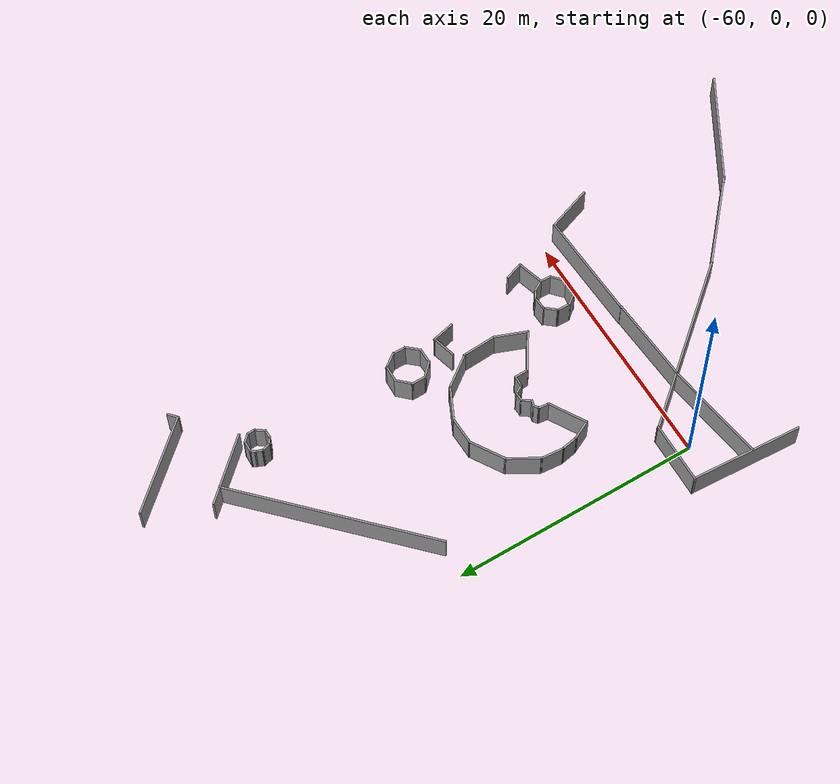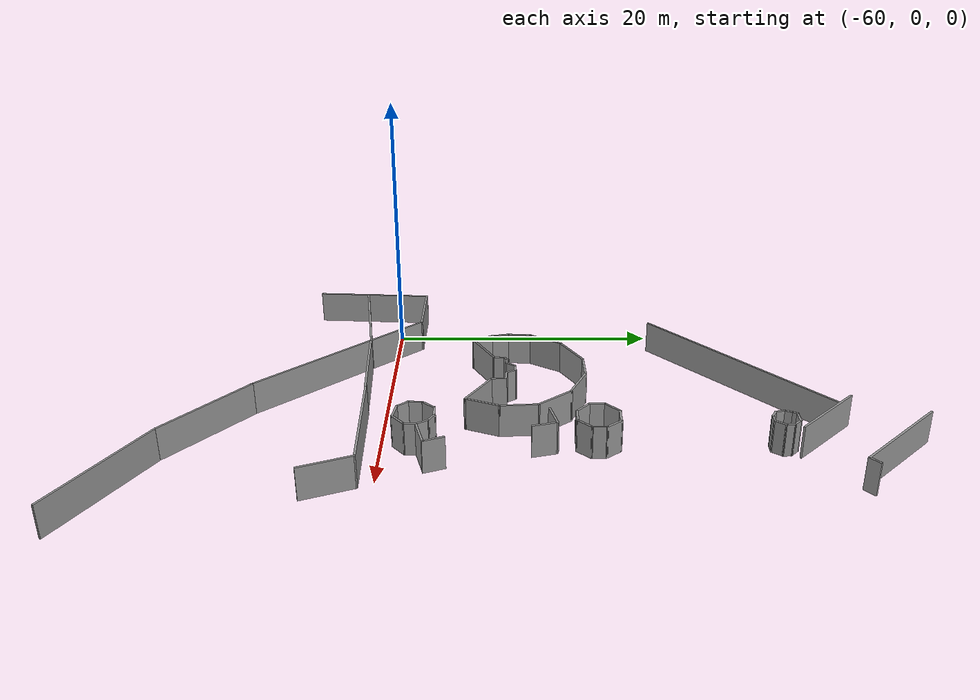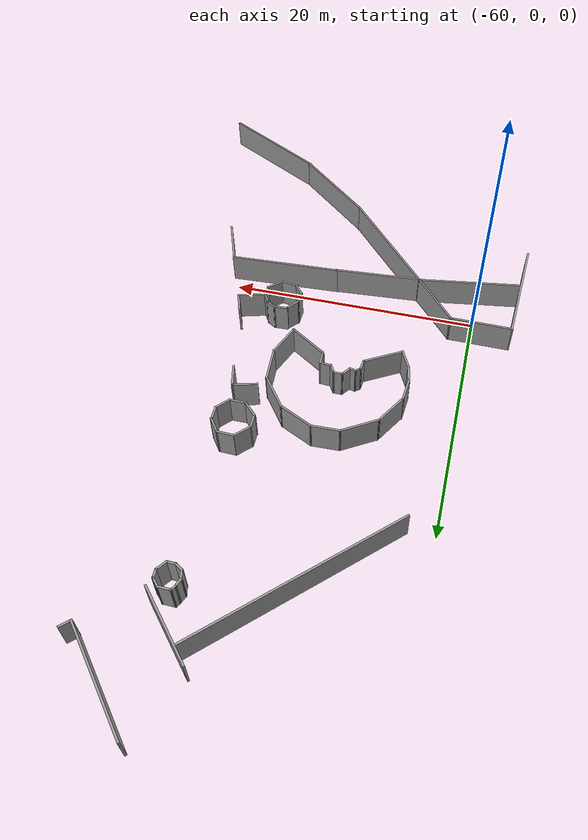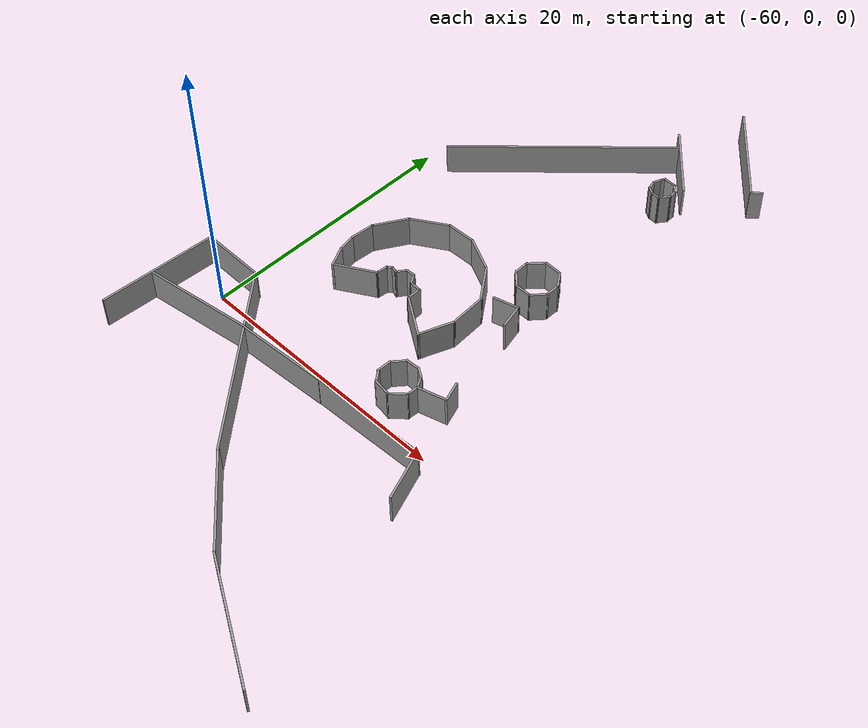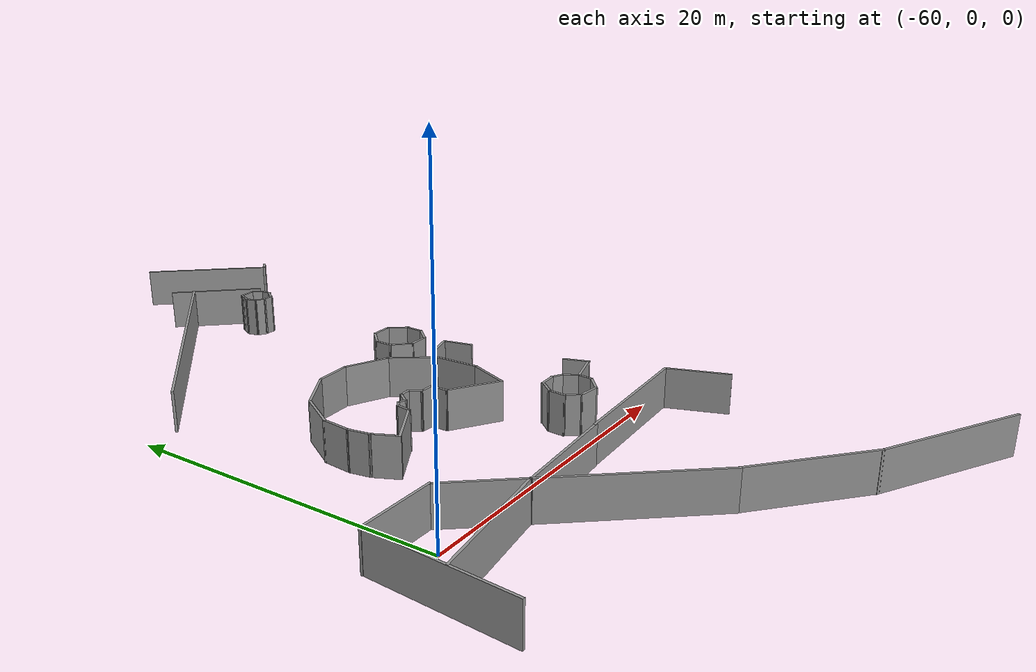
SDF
<sdf version="1.6">
 <model name="Area_B">
  <pose>-32.1242 10.8214 0 0 -0 0</pose>
  <link name="Wall_121">
   <collision name="Wall_121_Collision">
    <geometry><box><size>3.88397 0.15 2.5</size></box></geometry>
    <pose>0 0 1.25 0 -0 0</pose>
   </collision>
   <visual name="Wall_121_Visual">
    <pose>0 0 1.25 0 -0 0</pose>
    <geometry><box><size>3.88397 0.15 2.5</size></box></geometry>
    <material>
     <script><uri>file://media/materials/scripts/gazebo.material</uri><name>Gazebo/Grey</name></script>
     <ambient>1 1 1 1</ambient>
    </material>
    <meta><layer>0</layer></meta>
   </visual>
   <pose>-6.68095 -13.663 0 0 -0 1.92212</pose>
  </link>
  <link name="Wall_122">
   <collision name="Wall_122_Collision">
    <geometry><box><size>8.9663 0.15 2.5</size></box></geometry>
    <pose>0 0 1.25 0 -0 0</pose>
   </collision>
   <visual name="Wall_122_Visual">
    <pose>0 0 1.25 0 -0 0</pose>
    <geometry><box><size>8.9663 0.15 2.5</size></box></geometry>
    <material>
     <script><uri>file://media/materials/scripts/gazebo.material</uri><name>Gazebo/Grey</name></script>
     <ambient>1 1 1 1</ambient>
    </material>
    <meta><layer>0</layer></meta>
   </visual>
   <pose>-11.7275 -12.0686 0 0 -0 -3.09867</pose>
  </link>
  <link name="Wall_123">
   <collision name="Wall_123_Collision">
    <geometry><box><size>7.06271 0.15 2.5</size></box></geometry>
    <pose>0 0 1.25 0 -0 0</pose>
   </collision>
   <visual name="Wall_123_Visual">
    <pose>0 0 1.25 0 -0 0</pose>
    <geometry><box><size>7.06271 0.15 2.5</size></box></geometry>
    <material>
     <script><uri>file://media/materials/scripts/gazebo.material</uri><name>Gazebo/Grey</name></script>
     <ambient>1 1 1 1</ambient>
    </material>
    <meta><layer>0</layer></meta>
   </visual>
   <pose>-19.5811 -12.5071 0 0 -0 -3.07824</pose>
  </link>
  <link name="Wall_124">
   <collision name="Wall_124_Collision">
    <geometry><box><size>10.3956 0.15 2.5</size></box></geometry>
    <pose>0 0 1.25 0 -0 0</pose>
   </collision>
   <visual name="Wall_124_Visual">
    <pose>0 0 1.25 0 -0 0</pose>
    <geometry><box><size>10.3956 0.15 2.5</size></box></geometry>
    <material>
     <script><uri>file://media/materials/scripts/gazebo.material</uri><name>Gazebo/Grey</name></script>
     <ambient>1 1 1 1</ambient>
    </material>
    <meta><layer>0</layer></meta>
   </visual>
   <pose>-19.7066 -16.5934 0 0 -0 -0.864734</pose>
  </link>
  <link name="Wall_125">
   <collision name="Wall_125_Collision">
    <geometry><box><size>7.87765 0.15 2.5</size></box></geometry>
    <pose>0 0 1.25 0 -0 0</pose>
   </collision>
   <visual name="Wall_125_Visual">
    <pose>0 0 1.25 0 -0 0</pose>
    <geometry><box><size>7.87765 0.15 2.5</size></box></geometry>
    <material>
     <script><uri>file://media/materials/scripts/gazebo.material</uri><name>Gazebo/Grey</name></script>
     <ambient>1 1 1 1</ambient>
    </material>
    <meta><layer>0</layer></meta>
   </visual>
   <pose>-13.4826 -23.0215 0 0 -0 -0.721859</pose>
  </link>
  <link name="Wall_126">
   <collision name="Wall_126_Collision">
    <geometry><box><size>9.61622 0.15 2.5</size></box></geometry>
    <pose>0 0 1.25 0 -0 0</pose>
   </collision>
   <visual name="Wall_126_Visual">
    <pose>0 0 1.25 0 -0 0</pose>
    <geometry><box><size>9.61622 0.15 2.5</size></box></geometry>
    <material>
     <script><uri>file://media/materials/scripts/gazebo.material</uri><name>Gazebo/Grey</name></script>
     <ambient>1 1 1 1</ambient>
    </material>
    <meta><layer>0</layer></meta>
   </visual>
   <pose>-6.48925 -27.9108 0 0 -0 -0.516207</pose>
  </link>
  <link name="Wall_136">
   <collision name="Wall_136_Collision">
    <geometry><box><size>4.97543 0.15 2.5</size></box></geometry>
    <pose>0 0 1.25 0 -0 0</pose>
   </collision>
   <visual name="Wall_136_Visual">
    <pose>0 0 1.25 0 -0 0</pose>
    <geometry><box><size>4.97543 0.15 2.5</size></box></geometry>
    <material>
     <script><uri>file://media/materials/scripts/gazebo.material</uri><name>Gazebo/Grey</name></script>
     <ambient>1 1 1 1</ambient>
    </material>
    <meta><layer>0</layer></meta>
   </visual>
   <pose>-24.5908 -10.8551 0 0 -0 2.27406</pose>
  </link>
  <link name="Wall_137">
   <collision name="Wall_137_Collision">
    <geometry><box><size>5.04681 0.15 2.5</size></box></geometry>
    <pose>0 0 1.25 0 -0 0</pose>
   </collision>
   <visual name="Wall_137_Visual">
    <pose>0 0 1.25 0 -0 0</pose>
    <geometry><box><size>5.04681 0.15 2.5</size></box></geometry>
    <material>
     <script><uri>file://media/materials/scripts/gazebo.material</uri><name>Gazebo/Grey</name></script>
     <ambient>1 1 1 1</ambient>
    </material>
    <meta><layer>0</layer></meta>
   </visual>
   <pose>-28.5688 -8.98425 0 0 -0 3.1291</pose>
  </link>
  <link name="Wall_138">
   <collision name="Wall_138_Collision">
    <geometry><box><size>9.02765 0.15 2.5</size></box></geometry>
    <pose>0 0 1.25 0 -0 0</pose>
   </collision>
   <visual name="Wall_138_Visual">
    <pose>0 0 1.25 0 -0 0</pose>
    <geometry><box><size>9.02765 0.15 2.5</size></box></geometry>
    <material>
     <script><uri>file://media/materials/scripts/gazebo.material</uri><name>Gazebo/Grey</name></script>
     <ambient>1 1 1 1</ambient>
    </material>
    <meta><layer>0</layer></meta>
   </visual>
   <pose>-31.2617 -13.3839 0 0 -0 -1.63286</pose>
  </link>
  <link name="Wall_141">
   <collision name="Wall_141_Collision">
    <geometry><box><size>8.46011 0.15 2.5</size></box></geometry>
    <pose>0 0 1.25 0 -0 0</pose>
   </collision>
   <visual name="Wall_141_Visual">
    <pose>0 0 1.25 0 -0 0</pose>
    <geometry><box><size>8.46011 0.15 2.5</size></box></geometry>
    <material>
     <script><uri>file://media/materials/scripts/gazebo.material</uri><name>Gazebo/Grey</name></script>
     <ambient>1 1 1 1</ambient>
    </material>
    <meta><layer>0</layer></meta>
   </visual>
   <pose>-27.1416 -13.2978 0 0 -0 0.145493</pose>
  </link>
  <link name="Wall_163">
   <collision name="Wall_163_Collision">
    <geometry><box><size>1.24033 0.15 2.5</size></box></geometry>
    <pose>0 0 1.25 0 -0 0</pose>
   </collision>
   <visual name="Wall_163_Visual">
    <pose>0 0 1.25 0 -0 0</pose>
    <geometry><box><size>1.24033 0.15 2.5</size></box></geometry>
    <material>
     <script><uri>file://media/materials/scripts/gazebo.material</uri><name>Gazebo/Grey</name></script>
     <ambient>1 1 1 1</ambient>
    </material>
    <meta><layer>0</layer></meta>
   </visual>
   <pose>-13.5147 -7.61319 0 0 -0 -2.26476</pose>
  </link>
  <link name="Wall_164">
   <collision name="Wall_164_Collision">
    <geometry><box><size>1.17243 0.15 2.5</size></box></geometry>
    <pose>0 0 1.25 0 -0 0</pose>
   </collision>
   <visual name="Wall_164_Visual">
    <pose>0 0 1.25 0 -0 0</pose>
    <geometry><box><size>1.17243 0.15 2.5</size></box></geometry>
    <material>
     <script><uri>file://media/materials/scripts/gazebo.material</uri><name>Gazebo/Grey</name></script>
     <ambient>1 1 1 1</ambient>
    </material>
    <meta><layer>0</layer></meta>
   </visual>
   <pose>-13.885 -8.5233 0 0 -0 -1.61316</pose>
  </link>
  <link name="Wall_165">
   <collision name="Wall_165_Collision">
    <geometry><box><size>1.05804 0.15 2.5</size></box></geometry>
    <pose>0 0 1.25 0 -0 0</pose>
   </collision>
   <visual name="Wall_165_Visual">
    <pose>0 0 1.25 0 -0 0</pose>
    <geometry><box><size>1.05804 0.15 2.5</size></box></geometry>
    <material>
     <script><uri>file://media/materials/scripts/gazebo.material</uri><name>Gazebo/Grey</name></script>
     <ambient>1 1 1 1</ambient>
    </material>
    <meta><layer>0</layer></meta>
   </visual>
   <pose>-13.6083 -9.39319 0 0 -0 -0.91103</pose>
  </link>
  <link name="Wall_166">
   <collision name="Wall_166_Collision">
    <geometry><box><size>1.427 0.15 2.5</size></box></geometry>
    <pose>0 0 1.25 0 -0 0</pose>
   </collision>
   <visual name="Wall_166_Visual">
    <pose>0 0 1.25 0 -0 0</pose>
    <geometry><box><size>1.427 0.15 2.5</size></box></geometry>
    <material>
     <script><uri>file://media/materials/scripts/gazebo.material</uri><name>Gazebo/Grey</name></script>
     <ambient>1 1 1 1</ambient>
    </material>
    <meta><layer>0</layer></meta>
   </visual>
   <pose>-12.6982 -9.8641 0 0 -0 -0.144696</pose>
  </link>
  <link name="Wall_167">
   <collision name="Wall_167_Collision">
    <geometry><box><size>1.45625 0.15 2.5</size></box></geometry>
    <pose>0 0 1.25 0 -0 0</pose>
   </collision>
   <visual name="Wall_167_Visual">
    <pose>0 0 1.25 0 -0 0</pose>
    <geometry><box><size>1.45625 0.15 2.5</size></box></geometry>
    <material>
     <script><uri>file://media/materials/scripts/gazebo.material</uri><name>Gazebo/Grey</name></script>
     <ambient>1 1 1 1</ambient>
    </material>
    <meta><layer>0</layer></meta>
   </visual>
   <pose>-11.58 -9.54037 0 0 -0 0.730738</pose>
  </link>
  <link name="Wall_168">
   <collision name="Wall_168_Collision">
    <geometry><box><size>0.972298 0.15 2.5</size></box></geometry>
    <pose>0 0 1.25 0 -0 0</pose>
   </collision>
   <visual name="Wall_168_Visual">
    <pose>0 0 1.25 0 -0 0</pose>
    <geometry><box><size>0.972298 0.15 2.5</size></box></geometry>
    <material>
     <script><uri>file://media/materials/scripts/gazebo.material</uri><name>Gazebo/Grey</name></script>
     <ambient>1 1 1 1</ambient>
    </material>
    <meta><layer>0</layer></meta>
   </visual>
   <pose>-11.0719 -8.67377 0 0 -0 1.51807</pose>
  </link>
  <link name="Wall_169">
   <collision name="Wall_169_Collision">
    <geometry><box><size>1.05324 0.15 2.5</size></box></geometry>
    <pose>0 0 1.25 0 -0 0</pose>
   </collision>
   <visual name="Wall_169_Visual">
    <pose>0 0 1.25 0 -0 0</pose>
    <geometry><box><size>1.05324 0.15 2.5</size></box></geometry>
    <material>
     <script><uri>file://media/materials/scripts/gazebo.material</uri><name>Gazebo/Grey</name></script>
     <ambient>1 1 1 1</ambient>
    </material>
    <meta><layer>0</layer></meta>
   </visual>
   <pose>-11.285 -7.87739 0 0 -0 2.11747</pose>
  </link>
  <link name="Wall_170">
   <collision name="Wall_170_Collision">
    <geometry><box><size>0.889481 0.15 2.5</size></box></geometry>
    <pose>0 0 1.25 0 -0 0</pose>
   </collision>
   <visual name="Wall_170_Visual">
    <pose>0 0 1.25 0 -0 0</pose>
    <geometry><box><size>0.889481 0.15 2.5</size></box></geometry>
    <material>
     <script><uri>file://media/materials/scripts/gazebo.material</uri><name>Gazebo/Grey</name></script>
     <ambient>1 1 1 1</ambient>
    </material>
    <meta><layer>0</layer></meta>
   </visual>
   <pose>-11.8383 -7.28371 0 0 -0 2.60891</pose>
  </link>
  <link name="Wall_171">
   <collision name="Wall_171_Collision">
    <geometry><box><size>1.17318 0.15 2.5</size></box></geometry>
    <pose>0 0 1.25 0 -0 0</pose>
   </collision>
   <visual name="Wall_171_Visual">
    <pose>0 0 1.25 0 -0 0</pose>
    <geometry><box><size>1.17318 0.15 2.5</size></box></geometry>
    <material>
     <script><uri>file://media/materials/scripts/gazebo.material</uri><name>Gazebo/Grey</name></script>
     <ambient>1 1 1 1</ambient>
    </material>
    <meta><layer>0</layer></meta>
   </visual>
   <pose>-12.668 -7.13616 0 0 -0 -3.10227</pose>
  </link>
  <link name="Wall_174">
   <collision name="Wall_174_Collision">
    <geometry><box><size>2.26077 0.15 2.5</size></box></geometry>
    <pose>0 0 1.25 0 -0 0</pose>
   </collision>
   <visual name="Wall_174_Visual">
    <pose>0 0 1.25 0 -0 0</pose>
    <geometry><box><size>2.26077 0.15 2.5</size></box></geometry>
    <material>
     <script><uri>file://media/materials/scripts/gazebo.material</uri><name>Gazebo/Grey</name></script>
     <ambient>1 1 1 1</ambient>
    </material>
    <meta><layer>0</layer></meta>
   </visual>
   <pose>-10.0159 -7.97132 0 0 -0 0.280209</pose>
  </link>
  <link name="Wall_175">
   <collision name="Wall_175_Collision">
    <geometry><box><size>1.61868 0.15 2.5</size></box></geometry>
    <pose>0 0 1.25 0 -0 0</pose>
   </collision>
   <visual name="Wall_175_Visual">
    <pose>0 0 1.25 0 -0 0</pose>
    <geometry><box><size>1.61868 0.15 2.5</size></box></geometry>
    <material>
     <script><uri>file://media/materials/scripts/gazebo.material</uri><name>Gazebo/Grey</name></script>
     <ambient>1 1 1 1</ambient>
    </material>
    <meta><layer>0</layer></meta>
   </visual>
   <pose>-9.2267 -6.98722 0 0 -0 1.9111</pose>
  </link>
  <link name="Wall_178">
   <collision name="Wall_178_Collision">
    <geometry><box><size>2 0.15 2.5</size></box></geometry>
    <pose>0 0 1.25 0 -0 0</pose>
   </collision>
   <visual name="Wall_178_Visual">
    <pose>0 0 1.25 0 -0 0</pose>
    <geometry><box><size>2 0.15 2.5</size></box></geometry>
    <material>
     <script><uri>file://media/materials/scripts/gazebo.material</uri><name>Gazebo/Grey</name></script>
     <ambient>1 1 1 1</ambient>
    </material>
    <meta><layer>0</layer></meta>
   </visual>
   <pose>-12.0714 1.0505 0 0 -0 0.261799</pose>
  </link>
  <link name="Wall_179">
   <collision name="Wall_179_Collision">
    <geometry><box><size>1.90592 0.15 2.5</size></box></geometry>
    <pose>0 0 1.25 0 -0 0</pose>
   </collision>
   <visual name="Wall_179_Visual">
    <pose>0 0 1.25 0 -0 0</pose>
    <geometry><box><size>1.90592 0.15 2.5</size></box></geometry>
    <material>
     <script><uri>file://media/materials/scripts/gazebo.material</uri><name>Gazebo/Grey</name></script>
     <ambient>1 1 1 1</ambient>
    </material>
    <meta><layer>0</layer></meta>
   </visual>
   <pose>-10.9708 0.436711 0 0 -0 -1.33272</pose>
  </link>
  <link name="Wall_182">
   <collision name="Wall_182_Collision">
    <geometry><box><size>1.35124 0.15 2.5</size></box></geometry>
    <pose>0 0 1.25 0 -0 0</pose>
   </collision>
   <visual name="Wall_182_Visual">
    <pose>0 0 1.25 0 -0 0</pose>
    <geometry><box><size>1.35124 0.15 2.5</size></box></geometry>
    <material>
     <script><uri>file://media/materials/scripts/gazebo.material</uri><name>Gazebo/Grey</name></script>
     <ambient>1 1 1 1</ambient>
    </material>
    <meta><layer>0</layer></meta>
   </visual>
   <pose>-11.9623 5.61824 0 0 -0 -0.033494</pose>
  </link>
  <link name="Wall_183">
   <collision name="Wall_183_Collision">
    <geometry><box><size>1.42592 0.15 2.5</size></box></geometry>
    <pose>0 0 1.25 0 -0 0</pose>
   </collision>
   <visual name="Wall_183_Visual">
    <pose>0 0 1.25 0 -0 0</pose>
    <geometry><box><size>1.42592 0.15 2.5</size></box></geometry>
    <material>
     <script><uri>file://media/materials/scripts/gazebo.material</uri><name>Gazebo/Grey</name></script>
     <ambient>1 1 1 1</ambient>
    </material>
    <meta><layer>0</layer></meta>
   </visual>
   <pose>-10.981 5.10652 0 0 -0 -0.930819</pose>
  </link>
  <link name="Wall_184">
   <collision name="Wall_184_Collision">
    <geometry><box><size>1.15807 0.15 2.5</size></box></geometry>
    <pose>0 0 1.25 0 -0 0</pose>
   </collision>
   <visual name="Wall_184_Visual">
    <pose>0 0 1.25 0 -0 0</pose>
    <geometry><box><size>1.15807 0.15 2.5</size></box></geometry>
    <material>
     <script><uri>file://media/materials/scripts/gazebo.material</uri><name>Gazebo/Grey</name></script>
     <ambient>1 1 1 1</ambient>
    </material>
    <meta><layer>0</layer></meta>
   </visual>
   <pose>-10.6202 4.09077 0 0 -0 -1.5708</pose>
  </link>
  <link name="Wall_185">
   <collision name="Wall_185_Collision">
    <geometry><box><size>1.37174 0.15 2.5</size></box></geometry>
    <pose>0 0 1.25 0 -0 0</pose>
   </collision>
   <visual name="Wall_185_Visual">
    <pose>0 0 1.25 0 -0 0</pose>
    <geometry><box><size>1.37174 0.15 2.5</size></box></geometry>
    <material>
     <script><uri>file://media/materials/scripts/gazebo.material</uri><name>Gazebo/Grey</name></script>
     <ambient>1 1 1 1</ambient>
    </material>
    <meta><layer>0</layer></meta>
   </visual>
   <pose>-11.0036 3.12817 0 0 -0 -2.2925</pose>
  </link>
  <link name="Wall_186">
   <collision name="Wall_186_Collision">
    <geometry><box><size>1.31898 0.15 2.5</size></box></geometry>
    <pose>0 0 1.25 0 -0 0</pose>
   </collision>
   <visual name="Wall_186_Visual">
    <pose>0 0 1.25 0 -0 0</pose>
    <geometry><box><size>1.31898 0.15 2.5</size></box></geometry>
    <material>
     <script><uri>file://media/materials/scripts/gazebo.material</uri><name>Gazebo/Grey</name></script>
     <ambient>1 1 1 1</ambient>
    </material>
    <meta><layer>0</layer></meta>
   </visual>
   <pose>-12.0118 2.6696 0 0 -0 3.14159</pose>
  </link>
  <link name="Wall_187">
   <collision name="Wall_187_Collision">
    <geometry><box><size>1.49728 0.15 2.5</size></box></geometry>
    <pose>0 0 1.25 0 -0 0</pose>
   </collision>
   <visual name="Wall_187_Visual">
    <pose>0 0 1.25 0 -0 0</pose>
    <geometry><box><size>1.49728 0.15 2.5</size></box></geometry>
    <material>
     <script><uri>file://media/materials/scripts/gazebo.material</uri><name>Gazebo/Grey</name></script>
     <ambient>1 1 1 1</ambient>
    </material>
    <meta><layer>0</layer></meta>
   </visual>
   <pose>-13.0951 3.14357 0 0 -0 2.36114</pose>
  </link>
  <link name="Wall_188">
   <collision name="Wall_188_Collision">
    <geometry><box><size>1.21321 0.15 2.5</size></box></geometry>
    <pose>0 0 1.25 0 -0 0</pose>
   </collision>
   <visual name="Wall_188_Visual">
    <pose>0 0 1.25 0 -0 0</pose>
    <geometry><box><size>1.21321 0.15 2.5</size></box></geometry>
    <material>
     <script><uri>file://media/materials/scripts/gazebo.material</uri><name>Gazebo/Grey</name></script>
     <ambient>1 1 1 1</ambient>
    </material>
    <meta><layer>0</layer></meta>
   </visual>
   <pose>-13.5631 4.14875 0 0 -0 1.58855</pose>
  </link>
  <link name="Wall_189">
   <collision name="Wall_189_Collision">
    <geometry><box><size>1.46883 0.15 2.5</size></box></geometry>
    <pose>0 0 1.25 0 -0 0</pose>
   </collision>
   <visual name="Wall_189_Visual">
    <pose>0 0 1.25 0 -0 0</pose>
    <geometry><box><size>1.46883 0.15 2.5</size></box></geometry>
    <material>
     <script><uri>file://media/materials/scripts/gazebo.material</uri><name>Gazebo/Grey</name></script>
     <ambient>1 1 1 1</ambient>
    </material>
    <meta><layer>0</layer></meta>
   </visual>
   <pose>-13.0964 5.15626 0 0 -0 0.807159</pose>
  </link>
  <link name="Wall_238">
   <collision name="Wall_238_Collision">
    <geometry><box><size>8.22538 0.15 2.5</size></box></geometry>
    <pose>0 0 1.25 0 -0 0</pose>
   </collision>
   <visual name="Wall_238_Visual">
    <pose>0 0 1.25 0 -0 0</pose>
    <geometry><box><size>8.22538 0.15 2.5</size></box></geometry>
    <material>
     <script><uri>file://media/materials/scripts/gazebo.material</uri><name>Gazebo/Grey</name></script>
     <ambient>1 1 1 1</ambient>
    </material>
    <meta><layer>0</layer></meta>
   </visual>
   <pose>-9.64593 23.9733 0 0 -0 -0.834732</pose>
  </link>
  <link name="Wall_239">
   <collision name="Wall_239_Collision">
    <geometry><box><size>0.95593 0.15 2.5</size></box></geometry>
    <pose>0 0 1.25 0 -0 0</pose>
   </collision>
   <visual name="Wall_239_Visual">
    <pose>0 0 1.25 0 -0 0</pose>
    <geometry><box><size>0.95593 0.15 2.5</size></box></geometry>
    <material>
     <script><uri>file://media/materials/scripts/gazebo.material</uri><name>Gazebo/Grey</name></script>
     <ambient>1 1 1 1</ambient>
    </material>
    <meta><layer>0</layer></meta>
   </visual>
   <pose>-6.63926 21.2343 0 0 -0 0.746288</pose>
  </link>
  <link name="Wall_242">
   <collision name="Wall_242_Collision">
    <geometry><box><size>5.96125 0.15 2.5</size></box></geometry>
    <pose>0 0 1.25 0 -0 0</pose>
   </collision>
   <visual name="Wall_242_Visual">
    <pose>0 0 1.25 0 -0 0</pose>
    <geometry><box><size>5.96125 0.15 2.5</size></box></geometry>
    <material>
     <script><uri>file://media/materials/scripts/gazebo.material</uri><name>Gazebo/Grey</name></script>
     <ambient>1 1 1 1</ambient>
    </material>
    <meta><layer>0</layer></meta>
   </visual>
   <pose>-12.5311 19.9494 0 0 -0 -0.822117</pose>
  </link>
  <link name="Wall_245">
   <collision name="Wall_245_Collision">
    <geometry><box><size>17.167 0.15 2.5</size></box></geometry>
    <pose>0 0 1.25 0 -0 0</pose>
   </collision>
   <visual name="Wall_245_Visual">
    <pose>0 0 1.25 0 -0 0</pose>
    <geometry><box><size>17.167 0.15 2.5</size></box></geometry>
    <material>
     <script><uri>file://media/materials/scripts/gazebo.material</uri><name>Gazebo/Grey</name></script>
     <ambient>1 1 1 1</ambient>
    </material>
    <meta><layer>0</layer></meta>
   </visual>
   <pose>-19.6797 15.1372 0 0 -0 -2.37291</pose>
  </link>
  <link name="Wall_248">
   <collision name="Wall_248_Collision">
    <geometry><box><size>1.03967 0.15 2.5</size></box></geometry>
    <pose>0 0 1.25 0 -0 0</pose>
   </collision>
   <visual name="Wall_248_Visual">
    <pose>0 0 1.25 0 -0 0</pose>
    <geometry><box><size>1.03967 0.15 2.5</size></box></geometry>
    <material>
     <script><uri>file://media/materials/scripts/gazebo.material</uri><name>Gazebo/Grey</name></script>
     <ambient>1 1 1 1</ambient>
    </material>
    <meta><layer>0</layer></meta>
   </visual>
   <pose>-11.7563 17.724 0 0 -0 -0.022174</pose>
  </link>
  <link name="Wall_249">
   <collision name="Wall_249_Collision">
    <geometry><box><size>0.843236 0.15 2.5</size></box></geometry>
    <pose>0 0 1.25 0 -0 0</pose>
   </collision>
   <visual name="Wall_249_Visual">
    <pose>0 0 1.25 0 -0 0</pose>
    <geometry><box><size>0.843236 0.15 2.5</size></box></geometry>
    <material>
     <script><uri>file://media/materials/scripts/gazebo.material</uri><name>Gazebo/Grey</name></script>
     <ambient>1 1 1 1</ambient>
    </material>
    <meta><layer>0</layer></meta>
   </visual>
   <pose>-11.0665 17.4626 0 0 -0 -0.812228</pose>
  </link>
  <link name="Wall_250">
   <collision name="Wall_250_Collision">
    <geometry><box><size>0.73087 0.15 2.5</size></box></geometry>
    <pose>0 0 1.25 0 -0 0</pose>
   </collision>
   <visual name="Wall_250_Visual">
    <pose>0 0 1.25 0 -0 0</pose>
    <geometry><box><size>0.73087 0.15 2.5</size></box></geometry>
    <material>
     <script><uri>file://media/materials/scripts/gazebo.material</uri><name>Gazebo/Grey</name></script>
     <ambient>1 1 1 1</ambient>
    </material>
    <meta><layer>0</layer></meta>
   </visual>
   <pose>-10.815 16.9143 0 0 -0 -1.5255</pose>
  </link>
  <link name="Wall_251">
   <collision name="Wall_251_Collision">
    <geometry><box><size>0.966312 0.15 2.5</size></box></geometry>
    <pose>0 0 1.25 0 -0 0</pose>
   </collision>
   <visual name="Wall_251_Visual">
    <pose>0 0 1.25 0 -0 0</pose>
    <geometry><box><size>0.966312 0.15 2.5</size></box></geometry>
    <material>
     <script><uri>file://media/materials/scripts/gazebo.material</uri><name>Gazebo/Grey</name></script>
     <ambient>1 1 1 1</ambient>
    </material>
    <meta><layer>0</layer></meta>
   </visual>
   <pose>-11.0505 16.2956 0 0 -0 -2.20573</pose>
  </link>
  <link name="Wall_252">
   <collision name="Wall_252_Collision">
    <geometry><box><size>0.776611 0.15 2.5</size></box></geometry>
    <pose>0 0 1.25 0 -0 0</pose>
   </collision>
   <visual name="Wall_252_Visual">
    <pose>0 0 1.25 0 -0 0</pose>
    <geometry><box><size>0.776611 0.15 2.5</size></box></geometry>
    <material>
     <script><uri>file://media/materials/scripts/gazebo.material</uri><name>Gazebo/Grey</name></script>
     <ambient>1 1 1 1</ambient>
    </material>
    <meta><layer>0</layer></meta>
   </visual>
   <pose>-11.5991 15.9768 0 0 -0 3.11011</pose>
  </link>
  <link name="Wall_253">
   <collision name="Wall_253_Collision">
    <geometry><box><size>0.745458 0.15 2.5</size></box></geometry>
    <pose>0 0 1.25 0 -0 0</pose>
   </collision>
   <visual name="Wall_253_Visual">
    <pose>0 0 1.25 0 -0 0</pose>
    <geometry><box><size>0.745458 0.15 2.5</size></box></geometry>
    <material>
     <script><uri>file://media/materials/scripts/gazebo.material</uri><name>Gazebo/Grey</name></script>
     <ambient>1 1 1 1</ambient>
    </material>
    <meta><layer>0</layer></meta>
   </visual>
   <pose>-12.1655 16.1367 0 0 -0 2.58782</pose>
  </link>
  <link name="Wall_254">
   <collision name="Wall_254_Collision">
    <geometry><box><size>0.82095 0.15 2.5</size></box></geometry>
    <pose>0 0 1.25 0 -0 0</pose>
   </collision>
   <visual name="Wall_254_Visual">
    <pose>0 0 1.25 0 -0 0</pose>
    <geometry><box><size>0.82095 0.15 2.5</size></box></geometry>
    <material>
     <script><uri>file://media/materials/scripts/gazebo.material</uri><name>Gazebo/Grey</name></script>
     <ambient>1 1 1 1</ambient>
    </material>
    <meta><layer>0</layer></meta>
   </visual>
   <pose>-12.4997 16.6122 0 0 -0 1.81453</pose>
  </link>
  <link name="Wall_255">
   <collision name="Wall_255_Collision">
    <geometry><box><size>0.687425 0.15 2.5</size></box></geometry>
    <pose>0 0 1.25 0 -0 0</pose>
   </collision>
   <visual name="Wall_255_Visual">
    <pose>0 0 1.25 0 -0 0</pose>
    <geometry><box><size>0.687425 0.15 2.5</size></box></geometry>
    <material>
     <script><uri>file://media/materials/scripts/gazebo.material</uri><name>Gazebo/Grey</name></script>
     <ambient>1 1 1 1</ambient>
    </material>
    <meta><layer>0</layer></meta>
   </visual>
   <pose>-12.4751 17.1876 0 0 -0 1.19329</pose>
  </link>
  <link name="Wall_256">
   <collision name="Wall_256_Collision">
    <geometry><box><size>0.5 0.15 2.5</size></box></geometry>
    <pose>0 0 1.25 0 -0 0</pose>
   </collision>
   <visual name="Wall_256_Visual">
    <pose>0 0 1.25 0 -0 0</pose>
    <geometry><box><size>0.5 0.15 2.5</size></box></geometry>
    <material>
     <script><uri>file://media/materials/scripts/gazebo.material</uri><name>Gazebo/Grey</name></script>
     <ambient>1 1 1 1</ambient>
    </material>
    <meta><layer>0</layer></meta>
   </visual>
   <pose>-12.2885 17.5889 0 0 -0 1.0472</pose>
  </link>
  <link name="Wall_259">
   <collision name="Wall_259_Collision">
    <geometry><box><size>3.29157 0.15 2.5</size></box></geometry>
    <pose>0 0 1.25 0 -0 0</pose>
   </collision>
   <visual name="Wall_259_Visual">
    <pose>0 0 1.25 0 -0 0</pose>
    <geometry><box><size>3.29157 0.15 2.5</size></box></geometry>
    <material>
     <script><uri>file://media/materials/scripts/gazebo.material</uri><name>Gazebo/Grey</name></script>
     <ambient>1 1 1 1</ambient>
    </material>
    <meta><layer>0</layer></meta>
   </visual>
   <pose>-21.6338 -3.92248 0 0 -0 0.527143</pose>
  </link>
  <link name="Wall_260">
   <collision name="Wall_260_Collision">
    <geometry><box><size>0.992006 0.15 2.5</size></box></geometry>
    <pose>0 0 1.25 0 -0 0</pose>
   </collision>
   <visual name="Wall_260_Visual">
    <pose>0 0 1.25 0 -0 0</pose>
    <geometry><box><size>0.992006 0.15 2.5</size></box></geometry>
    <material>
     <script><uri>file://media/materials/scripts/gazebo.material</uri><name>Gazebo/Grey</name></script>
     <ambient>1 1 1 1</ambient>
    </material>
    <meta><layer>0</layer></meta>
   </visual>
   <pose>-20.2271 -2.72936 0 0 -0 1.45375</pose>
  </link>
  <link name="Wall_261">
   <collision name="Wall_261_Collision">
    <geometry><box><size>0.555663 0.15 2.5</size></box></geometry>
    <pose>0 0 1.25 0 -0 0</pose>
   </collision>
   <visual name="Wall_261_Visual">
    <pose>0 0 1.25 0 -0 0</pose>
    <geometry><box><size>0.555663 0.15 2.5</size></box></geometry>
    <material>
     <script><uri>file://media/materials/scripts/gazebo.material</uri><name>Gazebo/Grey</name></script>
     <ambient>1 1 1 1</ambient>
    </material>
    <meta><layer>0</layer></meta>
   </visual>
   <pose>-20.0183 -2.20124 0 0 -0 0.665299</pose>
  </link>
  <link name="Wall_262">
   <collision name="Wall_262_Collision">
    <geometry><box><size>0.605126 0.15 2.5</size></box></geometry>
    <pose>0 0 1.25 0 -0 0</pose>
   </collision>
   <visual name="Wall_262_Visual">
    <pose>0 0 1.25 0 -0 0</pose>
    <geometry><box><size>0.605126 0.15 2.5</size></box></geometry>
    <material>
     <script><uri>file://media/materials/scripts/gazebo.material</uri><name>Gazebo/Grey</name></script>
     <ambient>1 1 1 1</ambient>
    </material>
    <meta><layer>0</layer></meta>
   </visual>
   <pose>-19.6235 -2.13382 0 0 -0 -0.256737</pose>
  </link>
  <link name="Wall_263">
   <collision name="Wall_263_Collision">
    <geometry><box><size>0.960237 0.15 2.5</size></box></geometry>
    <pose>0 0 1.25 0 -0 0</pose>
   </collision>
   <visual name="Wall_263_Visual">
    <pose>0 0 1.25 0 -0 0</pose>
    <geometry><box><size>0.960237 0.15 2.5</size></box></geometry>
    <material>
     <script><uri>file://media/materials/scripts/gazebo.material</uri><name>Gazebo/Grey</name></script>
     <ambient>1 1 1 1</ambient>
    </material>
    <meta><layer>0</layer></meta>
   </visual>
   <pose>-19.1794 -1.86461 0 0 -0 0.939294</pose>
  </link>
  <link name="Wall_264">
   <collision name="Wall_264_Collision">
    <geometry><box><size>0.77278 0.15 2.5</size></box></geometry>
    <pose>0 0 1.25 0 -0 0</pose>
   </collision>
   <visual name="Wall_264_Visual">
    <pose>0 0 1.25 0 -0 0</pose>
    <geometry><box><size>0.77278 0.15 2.5</size></box></geometry>
    <material>
     <script><uri>file://media/materials/scripts/gazebo.material</uri><name>Gazebo/Grey</name></script>
     <ambient>1 1 1 1</ambient>
    </material>
    <meta><layer>0</layer></meta>
   </visual>
   <pose>-18.6289 -1.54828 0 0 -0 0.014624</pose>
  </link>
  <link name="Wall_265">
   <collision name="Wall_265_Collision">
    <geometry><box><size>0.904889 0.15 2.5</size></box></geometry>
    <pose>0 0 1.25 0 -0 0</pose>
   </collision>
   <visual name="Wall_265_Visual">
    <pose>0 0 1.25 0 -0 0</pose>
    <geometry><box><size>0.904889 0.15 2.5</size></box></geometry>
    <material>
     <script><uri>file://media/materials/scripts/gazebo.material</uri><name>Gazebo/Grey</name></script>
     <ambient>1 1 1 1</ambient>
    </material>
    <meta><layer>0</layer></meta>
   </visual>
   <pose>-18.1164 -1.8479 0 0 -0 -1.00876</pose>
  </link>
  <link name="Wall_266">
   <collision name="Wall_266_Collision">
    <geometry><box><size>0.984286 0.15 2.5</size></box></geometry>
    <pose>0 0 1.25 0 -0 0</pose>
   </collision>
   <visual name="Wall_266_Visual">
    <pose>0 0 1.25 0 -0 0</pose>
    <geometry><box><size>0.984286 0.15 2.5</size></box></geometry>
    <material>
     <script><uri>file://media/materials/scripts/gazebo.material</uri><name>Gazebo/Grey</name></script>
     <ambient>1 1 1 1</ambient>
    </material>
    <meta><layer>0</layer></meta>
   </visual>
   <pose>-17.5143 -2.19666 0 0 -0 -0.070467</pose>
  </link>
  <link name="Wall_267">
   <collision name="Wall_267_Collision">
    <geometry><box><size>1.18658 0.15 2.5</size></box></geometry>
    <pose>0 0 1.25 0 -0 0</pose>
   </collision>
   <visual name="Wall_267_Visual">
    <pose>0 0 1.25 0 -0 0</pose>
    <geometry><box><size>1.18658 0.15 2.5</size></box></geometry>
    <material>
     <script><uri>file://media/materials/scripts/gazebo.material</uri><name>Gazebo/Grey</name></script>
     <ambient>1 1 1 1</ambient>
    </material>
    <meta><layer>0</layer></meta>
   </visual>
   <pose>-17.0696 -2.74414 0 0 -0 -1.545</pose>
  </link>
  <link name="Wall_268">
   <collision name="Wall_268_Collision">
    <geometry><box><size>3.45497 0.15 2.5</size></box></geometry>
    <pose>0 0 1.25 0 -0 0</pose>
   </collision>
   <visual name="Wall_268_Visual">
    <pose>0 0 1.25 0 -0 0</pose>
    <geometry><box><size>3.45497 0.15 2.5</size></box></geometry>
    <material>
     <script><uri>file://media/materials/scripts/gazebo.material</uri><name>Gazebo/Grey</name></script>
     <ambient>1 1 1 1</ambient>
    </material>
    <meta><layer>0</layer></meta>
   </visual>
   <pose>-15.6571 -4.16527 0 0 -0 -0.578127</pose>
  </link>
  <link name="Wall_269">
   <collision name="Wall_269_Collision">
    <geometry><box><size>2.72696 0.15 2.5</size></box></geometry>
    <pose>0 0 1.25 0 -0 0</pose>
   </collision>
   <visual name="Wall_269_Visual">
    <pose>0 0 1.25 0 -0 0</pose>
    <geometry><box><size>2.72696 0.15 2.5</size></box></geometry>
    <material>
     <script><uri>file://media/materials/scripts/gazebo.material</uri><name>Gazebo/Grey</name></script>
     <ambient>1 1 1 1</ambient>
    </material>
    <meta><layer>0</layer></meta>
   </visual>
   <pose>-13.8093 -3.85098 0 0 -0 1.20252</pose>
  </link>
  <link name="Wall_270">
   <collision name="Wall_270_Collision">
    <geometry><box><size>2.88633 0.15 2.5</size></box></geometry>
    <pose>0 0 1.25 0 -0 0</pose>
   </collision>
   <visual name="Wall_270_Visual">
    <pose>0 0 1.25 0 -0 0</pose>
    <geometry><box><size>2.88633 0.15 2.5</size></box></geometry>
    <material>
     <script><uri>file://media/materials/scripts/gazebo.material</uri><name>Gazebo/Grey</name></script>
     <ambient>1 1 1 1</ambient>
    </material>
    <meta><layer>0</layer></meta>
   </visual>
   <pose>-13.4142 -1.28331 0 0 -0 1.63219</pose>
  </link>
  <link name="Wall_271">
   <collision name="Wall_271_Collision">
    <geometry><box><size>3.09469 0.15 2.5</size></box></geometry>
    <pose>0 0 1.25 0 -0 0</pose>
   </collision>
   <visual name="Wall_271_Visual">
    <pose>0 0 1.25 0 -0 0</pose>
    <geometry><box><size>3.09469 0.15 2.5</size></box></geometry>
    <material>
     <script><uri>file://media/materials/scripts/gazebo.material</uri><name>Gazebo/Grey</name></script>
     <ambient>1 1 1 1</ambient>
    </material>
    <meta><layer>0</layer></meta>
   </visual>
   <pose>-14.3804 1.24585 0 0 -0 2.21328</pose>
  </link>
  <link name="Wall_272">
   <collision name="Wall_272_Collision">
    <geometry><box><size>2.91771 0.15 2.5</size></box></geometry>
    <pose>0 0 1.25 0 -0 0</pose>
   </collision>
   <visual name="Wall_272_Visual">
    <pose>0 0 1.25 0 -0 0</pose>
    <geometry><box><size>2.91771 0.15 2.5</size></box></geometry>
    <material>
     <script><uri>file://media/materials/scripts/gazebo.material</uri><name>Gazebo/Grey</name></script>
     <ambient>1 1 1 1</ambient>
    </material>
    <meta><layer>0</layer></meta>
   </visual>
   <pose>-16.5083 3.01213 0 0 -0 2.69097</pose>
  </link>
  <link name="Wall_273">
   <collision name="Wall_273_Collision">
    <geometry><box><size>2.27463 0.15 2.5</size></box></geometry>
    <pose>0 0 1.25 0 -0 0</pose>
   </collision>
   <visual name="Wall_273_Visual">
    <pose>0 0 1.25 0 -0 0</pose>
    <geometry><box><size>2.27463 0.15 2.5</size></box></geometry>
    <material>
     <script><uri>file://media/materials/scripts/gazebo.material</uri><name>Gazebo/Grey</name></script>
     <ambient>1 1 1 1</ambient>
    </material>
    <meta><layer>0</layer></meta>
   </visual>
   <pose>-18.8311 3.58442 0 0 -0 -3.11296</pose>
  </link>
  <link name="Wall_274">
   <collision name="Wall_274_Collision">
    <geometry><box><size>3.10008 0.15 2.5</size></box></geometry>
    <pose>0 0 1.25 0 -0 0</pose>
   </collision>
   <visual name="Wall_274_Visual">
    <pose>0 0 1.25 0 -0 0</pose>
    <geometry><box><size>3.10008 0.15 2.5</size></box></geometry>
    <material>
     <script><uri>file://media/materials/scripts/gazebo.material</uri><name>Gazebo/Grey</name></script>
     <ambient>1 1 1 1</ambient>
    </material>
    <meta><layer>0</layer></meta>
   </visual>
   <pose>-21.1673 2.78566 0 0 -0 -2.59369</pose>
  </link>
  <link name="Wall_275">
   <collision name="Wall_275_Collision">
    <geometry><box><size>2.82115 0.15 2.5</size></box></geometry>
    <pose>0 0 1.25 0 -0 0</pose>
   </collision>
   <visual name="Wall_275_Visual">
    <pose>0 0 1.25 0 -0 0</pose>
    <geometry><box><size>2.82115 0.15 2.5</size></box></geometry>
    <material>
     <script><uri>file://media/materials/scripts/gazebo.material</uri><name>Gazebo/Grey</name></script>
     <ambient>1 1 1 1</ambient>
    </material>
    <meta><layer>0</layer></meta>
   </visual>
   <pose>-23.1052 0.882294 0 0 -0 -2.10391</pose>
  </link>
  <link name="Wall_276">
   <collision name="Wall_276_Collision">
    <geometry><box><size>1.91092 0.15 2.5</size></box></geometry>
    <pose>0 0 1.25 0 -0 0</pose>
   </collision>
   <visual name="Wall_276_Visual">
    <pose>0 0 1.25 0 -0 0</pose>
    <geometry><box><size>1.91092 0.15 2.5</size></box></geometry>
    <material>
     <script><uri>file://media/materials/scripts/gazebo.material</uri><name>Gazebo/Grey</name></script>
     <ambient>1 1 1 1</ambient>
    </material>
    <meta><layer>0</layer></meta>
   </visual>
   <pose>-23.8732 -1.14528 0 0 -0 -1.65499</pose>
  </link>
  <link name="Wall_277">
   <collision name="Wall_277_Collision">
    <geometry><box><size>1.45353 0.15 2.5</size></box></geometry>
    <pose>0 0 1.25 0 -0 0</pose>
   </collision>
   <visual name="Wall_277_Visual">
    <pose>0 0 1.25 0 -0 0</pose>
    <geometry><box><size>1.45353 0.15 2.5</size></box></geometry>
    <material>
     <script><uri>file://media/materials/scripts/gazebo.material</uri><name>Gazebo/Grey</name></script>
     <ambient>1 1 1 1</ambient>
    </material>
    <meta><layer>0</layer></meta>
   </visual>
   <pose>-23.8256 -2.67814 0 0 -0 -1.38302</pose>
  </link>
  <link name="Wall_278">
   <collision name="Wall_278_Collision">
    <geometry><box><size>1.74011 0.15 2.5</size></box></geometry>
    <pose>0 0 1.25 0 -0 0</pose>
   </collision>
   <visual name="Wall_278_Visual">
    <pose>0 0 1.25 0 -0 0</pose>
    <geometry><box><size>1.74011 0.15 2.5</size></box></geometry>
    <material>
     <script><uri>file://media/materials/scripts/gazebo.material</uri><name>Gazebo/Grey</name></script>
     <ambient>1 1 1 1</ambient>
    </material>
    <meta><layer>0</layer></meta>
   </visual>
   <pose>-23.3541 -4.01721 0 0 -0 -1.11523</pose>
  </link>
  <static>1</static>
 </model>
</sdf>
